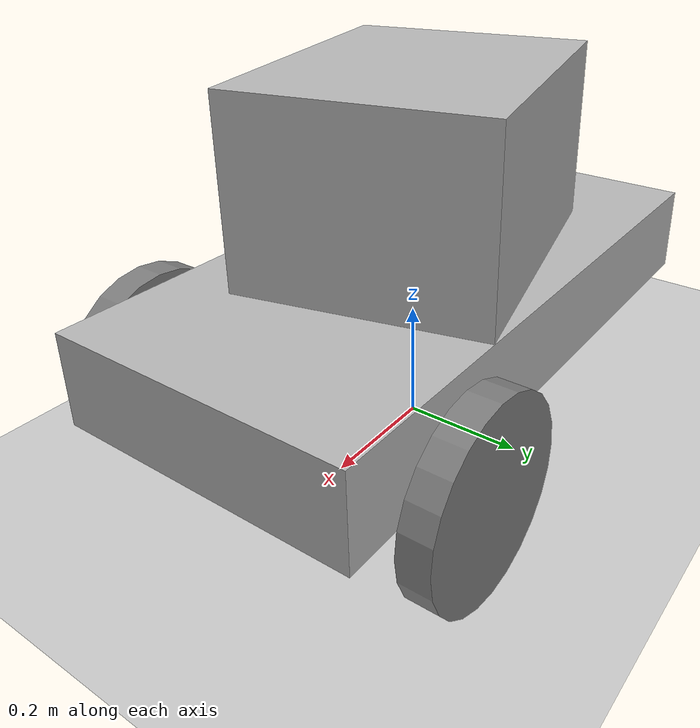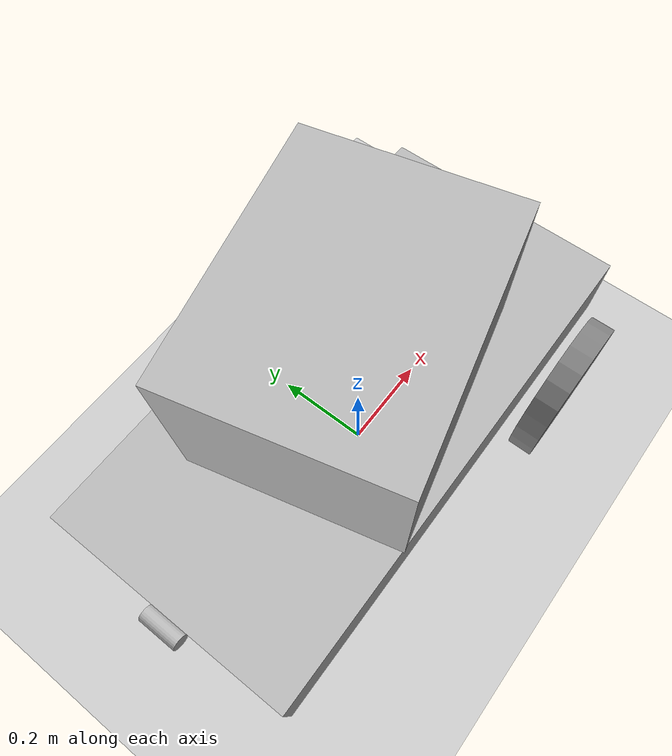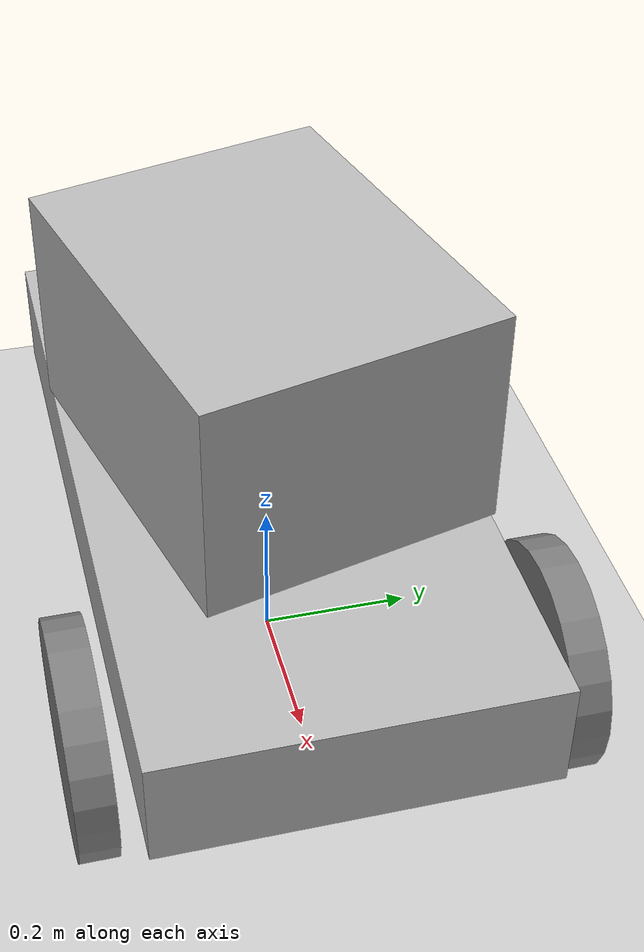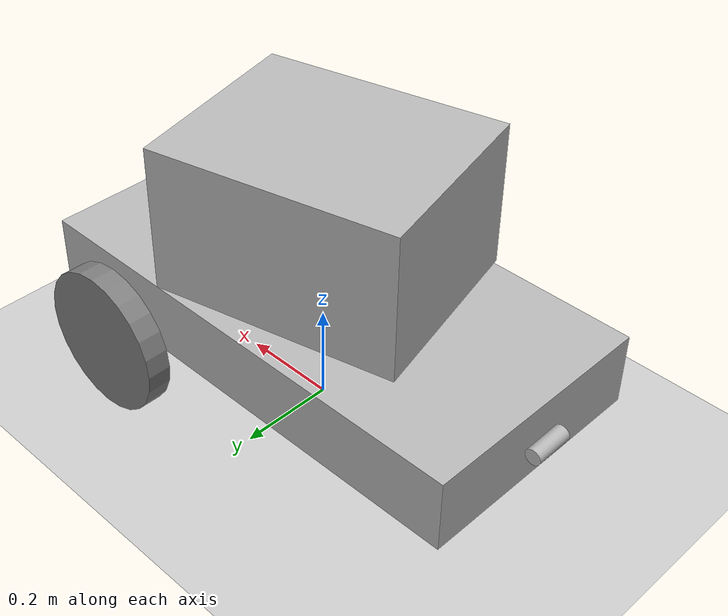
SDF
<sdf version="1.6">
 <world name="default">
  <light name="sun" type="directional">
   <pose>0 0 10 0 -0 0</pose>
   <diffuse>0.8 0.8 0.8 1</diffuse>
   <specular>0.2 0.2 0.2 1</specular>
   <attenuation>
    <range>1000</range>
    <constant>0.9</constant>
    <linear>0.01</linear>
    <quadratic>0.001</quadratic>
   </attenuation>
   <direction>-0.5 0.1 -0.9</direction>
  </light>
  <model name="ground_plane">
   <static>1</static>
   <link name="link">
    <collision name="collision">
     <geometry><plane><normal>0 0 1</normal><size>100 100</size></plane></geometry>
     <surface><friction><ode><mu>100</mu><mu2>50</mu2></ode></friction></surface>
    </collision>
    <visual name="visual">
     <cast_shadows>0</cast_shadows>
     <geometry><plane><normal>0 0 1</normal><size>100 100</size></plane></geometry>
     <material>
      <script><uri>file://media/materials/scripts/gazebo.material</uri><name>Gazebo/Grey</name></script>
     </material>
    </visual>
   </link>
  </model>
  <model name="Dolly">
   <pose>-0.015309 -0.000198 0.224806 3.3e-05 0.000632 0.000648</pose>
   <link name="chassis">
    <inertial>
     <mass>1</mass>
     <inertia><ixx>0.0227</ixx><ixy>0</ixy><ixz>0</ixz><iyy>0.0852</iyy><iyz>0</iyz><izz>0.1041</izz></inertia>
    </inertial>
    <visual name="visual">
     <geometry><box><size>1 0.5 0.15</size></box></geometry>
     <material>
      <script>
       <uri>model://dolly/materials/scripts</uri>
       <uri>model://dolly/materials/textures</uri>
       <name>Dolly/fur</name>
      </script>
     </material>
    </visual>
    <visual name="box">
     <pose>0 0 0.08 0 -0 0.24</pose>
     <geometry>
      <mesh><uri>model://cardboard_box/meshes/cardboard_box.dae</uri><scale>1.25932 1.00745 0.755591</scale></mesh>
     </geometry>
    </visual>
    <sensor name="sensor_ray" type="ray">
     <pose>0.5 0 0 0 -0 0</pose>
     <ray>
      <scan>
       <horizontal>
        <samples>200</samples>
        <resolution>1</resolution>
        <min_angle>-1</min_angle>
        <max_angle>1</max_angle>
       </horizontal>
       <vertical><samples>1</samples><min_angle>0</min_angle><max_angle>0</max_angle></vertical>
      </scan>
      <range><min>0.05</min><max>10</max></range>
     </ray>
     <always_on>1</always_on>
     <visualize>1</visualize>
     <update_rate>100</update_rate>
     <plugin name="laser" filename="libgazebo_ros_ray_sensor.so">
      <ros><namespace>/dolly</namespace><remapping>~/out:=laser_scan</remapping></ros>
      <output_type>sensor_msgs/LaserScan</output_type>
     </plugin>
    </sensor>
   </link>
   <link name="caster">
    <pose>-0.3 0 -0.125 0 -0 0</pose>
    <inertial>
     <mass>0.0415553</mass>
     <inertia>
      <ixx>7.97741e-05</ixx>
      <ixy>0</ixy>
      <ixz>0</ixz>
      <iyy>7.97741e-05</iyy>
      <iyz>0</iyz>
      <izz>7.97741e-05</izz>
     </inertia>
    </inertial>
    <visual name="visual">
     <geometry><sphere><radius>0.1</radius></sphere></geometry>
     <material>
      <diffuse>0.5 0.5 0.5 1</diffuse>
      <ambient>0 0 0 1</ambient>
      <specular>1 1 1 1</specular>
      <emissive>0 0 0 1</emissive>
     </material>
    </visual>
    <collision name="collision">
     <geometry><sphere><radius>0.1</radius></sphere></geometry>
     <surface>
      <friction><ode><mu>1</mu><mu2>1</mu2><slip1>0</slip1><slip2>0</slip2></ode></friction>
      <contact>
       <ode>
        <soft_cfm>0</soft_cfm>
        <soft_erp>0.2</soft_erp>
        <kp>1e+13</kp>
        <kd>1</kd>
        <max_vel>0.01</max_vel>
        <min_depth>0</min_depth>
       </ode>
      </contact>
     </surface>
    </collision>
   </link>
   <link name="left_wheel">
    <pose>0.3 0.3 -0.075 -1.5707 0 0</pose>
    <inertial>
     <mass>0.5</mass>
     <inertia><ixx>0.0029</ixx><ixy>0</ixy><ixz>0</ixz><iyy>0.0029</iyy><iyz>0</iyz><izz>0.0056</izz></inertia>
    </inertial>
    <visual name="visual">
     <geometry><cylinder><radius>0.15</radius><length>0.05</length></cylinder></geometry>
     <material>
      <diffuse>0.5 0.5 0.5 1</diffuse>
      <ambient>0 0 0 1</ambient>
      <specular>1 1 1 1</specular>
      <emissive>0 0 0 1</emissive>
     </material>
    </visual>
    <collision name="collision">
     <geometry><sphere><radius>0.15</radius></sphere></geometry>
     <surface>
      <friction><ode><mu>1</mu><mu2>1</mu2><slip1>0</slip1><slip2>0</slip2></ode></friction>
      <contact>
       <ode>
        <soft_cfm>0</soft_cfm>
        <soft_erp>0.2</soft_erp>
        <kp>1e+13</kp>
        <kd>1</kd>
        <max_vel>0.01</max_vel>
        <min_depth>0.01</min_depth>
       </ode>
      </contact>
     </surface>
    </collision>
   </link>
   <link name="right_wheel">
    <pose>0.3 -0.3 -0.075 -1.5707 0 0</pose>
    <inertial>
     <mass>0.5</mass>
     <inertia><ixx>0.0029</ixx><ixy>0</ixy><ixz>0</ixz><iyy>0.0029</iyy><iyz>0</iyz><izz>0.0056</izz></inertia>
    </inertial>
    <visual name="visual">
     <geometry><cylinder><radius>0.15</radius><length>0.05</length></cylinder></geometry>
     <material>
      <diffuse>0.5 0.5 0.5 1</diffuse>
      <ambient>0 0 0 1</ambient>
      <specular>1 1 1 1</specular>
      <emissive>0 0 0 1</emissive>
     </material>
    </visual>
    <collision name="collision">
     <geometry><sphere><radius>0.15</radius></sphere></geometry>
     <surface>
      <friction><ode><mu>1</mu><mu2>1</mu2><slip1>0</slip1><slip2>0</slip2></ode></friction>
      <contact>
       <ode>
        <soft_cfm>0</soft_cfm>
        <soft_erp>0.2</soft_erp>
        <kp>1e+13</kp>
        <kd>1</kd>
        <max_vel>0.01</max_vel>
        <min_depth>0.01</min_depth>
       </ode>
      </contact>
     </surface>
    </collision>
   </link>
   <link name="tail">
    <pose>-0.52 0 0 -1.6 0 0</pose>
    <inertial>
     <mass>0.0254232</mass>
     <inertia>
      <ixx>1.528e-05</ixx>
      <ixy>0</ixy>
      <ixz>0</ixz>
      <iyy>1.528e-05</iyy>
      <iyz>0</iyz>
      <izz>3.45e-06</izz>
     </inertia>
     <pose>0 0 -0.04 0 -0 0</pose>
    </inertial>
    <visual name="visual">
     <geometry><cylinder><radius>0.016468</radius><length>0.08</length></cylinder></geometry>
     <material>
      <script>
       <uri>model://dolly/materials/scripts</uri>
       <uri>model://dolly/materials/textures</uri>
       <name>Dolly/fur</name>
      </script>
     </material>
    </visual>
   </link>
   <joint name="left_wheel_joint" type="revolute">
    <parent>chassis</parent>
    <child>left_wheel</child>
    <axis>
     <xyz>0 0 1</xyz>
     <limit><lower>-1.79769e+308</lower><upper>1.79769e+308</upper></limit>
     <use_parent_model_frame>0</use_parent_model_frame>
     <dynamics><spring_reference>0</spring_reference><spring_stiffness>0</spring_stiffness></dynamics>
    </axis>
   </joint>
   <joint name="right_wheel_joint" type="revolute">
    <parent>chassis</parent>
    <child>right_wheel</child>
    <axis>
     <xyz>0 0 1</xyz>
     <limit><lower>-1.79769e+308</lower><upper>1.79769e+308</upper></limit>
     <use_parent_model_frame>0</use_parent_model_frame>
     <dynamics><spring_reference>0</spring_reference><spring_stiffness>0</spring_stiffness></dynamics>
    </axis>
   </joint>
   <joint name="caster_wheel" type="ball"><parent>chassis</parent><child>caster</child></joint>
   <joint name="tail_joint" type="revolute">
    <parent>chassis</parent>
    <child>tail</child>
    <pose>0 0 0.04 0 -0 0</pose>
    <axis>
     <xyz>1 0 0</xyz>
     <use_parent_model_frame>0</use_parent_model_frame>
     <limit>
      <lower>-1.79769e+308</lower>
      <upper>1.79769e+308</upper>
      <effort>-1</effort>
      <velocity>-1</velocity>
     </limit>
     <dynamics>
      <spring_reference>0</spring_reference>
      <spring_stiffness>0</spring_stiffness>
      <damping>0</damping>
      <friction>0</friction>
     </dynamics>
    </axis>
    <physics>
     <ode><limit><cfm>0</cfm><erp>0.2</erp></limit><suspension><cfm>0</cfm><erp>0.2</erp></suspension></ode>
    </physics>
   </joint>
   <plugin name="diff_drive" filename="libgazebo_ros_diff_drive.so">
    <ros><namespace>/dolly</namespace></ros>
    <left_joint>left_wheel_joint</left_joint>
    <right_joint>right_wheel_joint</right_joint>
    <wheel_separation>1.25</wheel_separation>
    <wheel_diameter>0.3</wheel_diameter>
    <max_wheel_torque>20</max_wheel_torque>
    <max_wheel_acceleration>1.0</max_wheel_acceleration>
    <publish_odom>1</publish_odom>
    <publish_odom_tf>1</publish_odom_tf>
    <odometry_frame>odom_demo</odometry_frame>
    <robot_base_frame>chassis</robot_base_frame>
   </plugin>
  </model>
  <gravity>0 0 -9.8</gravity>
  <magnetic_field>6e-06 2.3e-05 -4.2e-05</magnetic_field>
  <atmosphere type="adiabatic"/>
  <physics name="default_physics" default="0" type="ode">
   <max_step_size>0.001</max_step_size>
   <real_time_factor>1</real_time_factor>
   <real_time_update_rate>1000</real_time_update_rate>
  </physics>
  <scene><ambient>0.4 0.4 0.4 1</ambient><background>0.7 0.7 0.7 1</background><shadows>1</shadows></scene>
  <spherical_coordinates>
   <surface_model>EARTH_WGS84</surface_model>
   <latitude_deg>0</latitude_deg>
   <longitude_deg>0</longitude_deg>
   <elevation>0</elevation>
   <heading_deg>0</heading_deg>
  </spherical_coordinates>
 </world>
</sdf>
